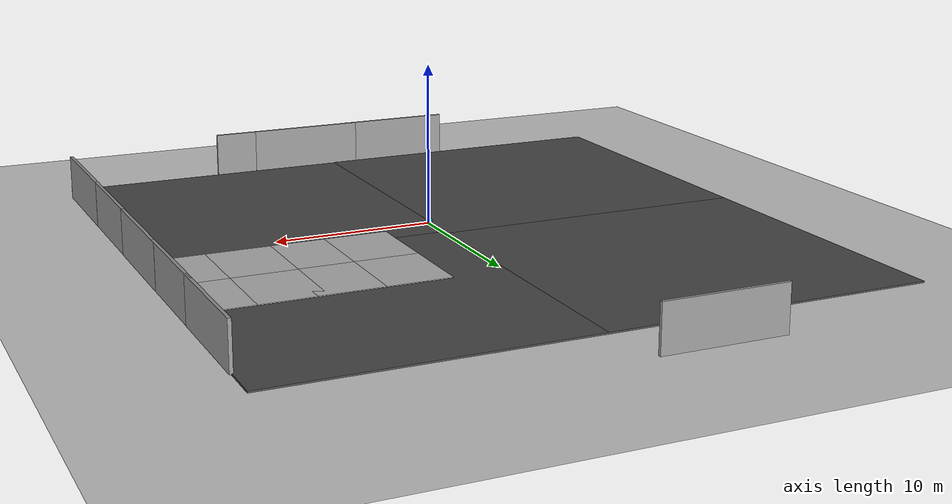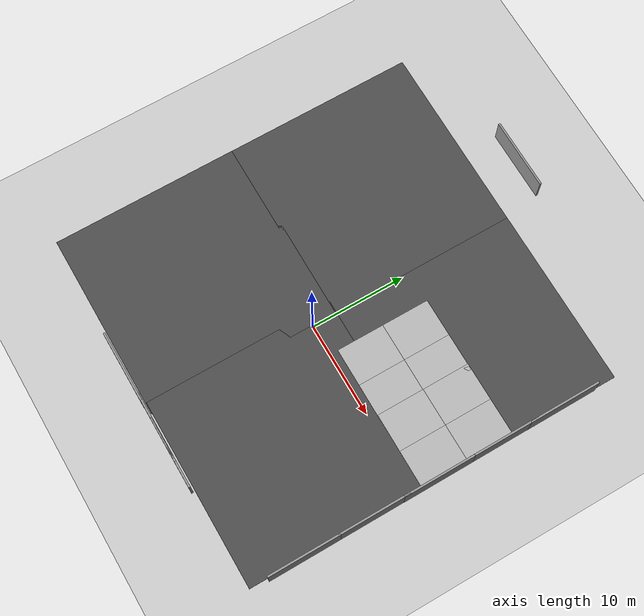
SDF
<sdf version="1.6">
 <world name="default">
  <model name="ground_plane">
   <static>1</static>
   <link name="link">
    <collision name="collision">
     <geometry><plane><normal>0 0 1</normal><size>100 100</size></plane></geometry>
     <surface><friction><ode><mu>100</mu><mu2>50</mu2></ode></friction></surface>
    </collision>
    <visual name="visual">
     <cast_shadows>0</cast_shadows>
     <geometry><plane><normal>0 0 1</normal><size>100 100</size></plane></geometry>
     <material>
      <script><uri>file://media/materials/scripts/gazebo.material</uri><name>Gazebo/Grey</name></script>
     </material>
    </visual>
   </link>
  </model>
  <model name="asphalt_plane">
   <static>1</static>
   <link name="link">
    <collision name="collision">
     <geometry><box><size>20 20 0.1</size></box></geometry>
     <surface><friction><ode><mu>100</mu><mu2>50</mu2></ode></friction></surface>
    </collision>
    <visual name="visual">
     <cast_shadows>0</cast_shadows>
     <geometry><box><size>20 20 0.1</size></box></geometry>
     <material>
      <script>
       <uri>model://asphalt_plane/materials/scripts</uri>
       <uri>model://asphalt_plane/materials/textures</uri>
       <name>vrc/asphalt</name>
      </script>
     </material>
    </visual>
   </link>
   <pose>-10.1692 -7.43707 0 0 -0 0</pose>
  </model>
  <model name="asphalt_plane_clone">
   <static>1</static>
   <link name="link">
    <collision name="collision">
     <geometry><box><size>20 20 0.1</size></box></geometry>
     <surface><friction><ode><mu>100</mu><mu2>50</mu2></ode></friction></surface>
    </collision>
    <visual name="visual">
     <cast_shadows>0</cast_shadows>
     <geometry><box><size>20 20 0.1</size></box></geometry>
     <material>
      <script>
       <uri>model://asphalt_plane/materials/scripts</uri>
       <uri>model://asphalt_plane/materials/textures</uri>
       <name>vrc/asphalt</name>
      </script>
     </material>
    </visual>
   </link>
   <pose>-10.1603 12.171 0 0 -0 0</pose>
  </model>
  <model name="asphalt_plane_clone_clone">
   <static>1</static>
   <link name="link">
    <collision name="collision">
     <geometry><box><size>20 20 0.1</size></box></geometry>
     <surface><friction><ode><mu>100</mu><mu2>50</mu2></ode></friction></surface>
    </collision>
    <visual name="visual">
     <cast_shadows>0</cast_shadows>
     <geometry><box><size>20 20 0.1</size></box></geometry>
     <material>
      <script>
       <uri>model://asphalt_plane/materials/scripts</uri>
       <uri>model://asphalt_plane/materials/textures</uri>
       <name>vrc/asphalt</name>
      </script>
     </material>
    </visual>
   </link>
   <pose>8.71597 12.1785 0 0 -0 0</pose>
  </model>
  <model name="asphalt_plane_clone_clone_0">
   <static>1</static>
   <link name="link">
    <collision name="collision">
     <geometry><box><size>20 20 0.1</size></box></geometry>
     <surface><friction><ode><mu>100</mu><mu2>50</mu2></ode></friction></surface>
    </collision>
    <visual name="visual">
     <cast_shadows>0</cast_shadows>
     <geometry><box><size>20 20 0.1</size></box></geometry>
     <material>
      <script>
       <uri>model://asphalt_plane/materials/scripts</uri>
       <uri>model://asphalt_plane/materials/textures</uri>
       <name>vrc/asphalt</name>
      </script>
     </material>
    </visual>
   </link>
   <pose>8.60996 -7.34898 0 0 -0 0</pose>
  </model>
  <model name="grey_wall">
   <static>1</static>
   <link name="link">
    <pose>0 0 1.4 0 -0 0</pose>
    <collision name="collision"><geometry><box><size>7.5 0.2 2.8</size></box></geometry></collision>
    <visual name="visual">
     <cast_shadows>0</cast_shadows>
     <geometry><box><size>7.5 0.2 2.8</size></box></geometry>
     <material>
      <script>
       <uri>model://grey_wall/materials/scripts</uri>
       <uri>model://grey_wall/materials/textures</uri>
       <name>vrc/grey_wall</name>
      </script>
     </material>
    </visual>
   </link>
   <pose>-4.8114 -17.6626 0 0 -0 0</pose>
  </model>
  <model name="grey_wall_clone">
   <static>1</static>
   <link name="link">
    <pose>0 0 1.4 0 -0 0</pose>
    <collision name="collision"><geometry><box><size>7.5 0.2 2.8</size></box></geometry></collision>
    <visual name="visual">
     <cast_shadows>0</cast_shadows>
     <geometry><box><size>7.5 0.2 2.8</size></box></geometry>
     <material>
      <script>
       <uri>model://grey_wall/materials/scripts</uri>
       <uri>model://grey_wall/materials/textures</uri>
       <name>vrc/grey_wall</name>
      </script>
     </material>
    </visual>
   </link>
   <pose>1.84642 -17.6367 0 0 -0 0</pose>
  </model>
  <model name="grey_wall_clone_0">
   <static>1</static>
   <link name="link">
    <pose>0 0 1.4 0 -0 0</pose>
    <collision name="collision"><geometry><box><size>7.5 0.2 2.8</size></box></geometry></collision>
    <visual name="visual">
     <cast_shadows>0</cast_shadows>
     <geometry><box><size>7.5 0.2 2.8</size></box></geometry>
     <material>
      <script>
       <uri>model://grey_wall/materials/scripts</uri>
       <uri>model://grey_wall/materials/textures</uri>
       <name>vrc/grey_wall</name>
      </script>
     </material>
    </visual>
   </link>
   <pose>4.62088 -17.6372 0 0 -0 0</pose>
  </model>
  <model name="grey_wall_clone_clone">
   <static>1</static>
   <link name="link">
    <pose>0 0 1.4 0 -0 0</pose>
    <collision name="collision"><geometry><box><size>7.5 0.2 2.8</size></box></geometry></collision>
    <visual name="visual">
     <cast_shadows>0</cast_shadows>
     <geometry><box><size>7.5 0.2 2.8</size></box></geometry>
     <material>
      <script>
       <uri>model://grey_wall/materials/scripts</uri>
       <uri>model://grey_wall/materials/textures</uri>
       <name>vrc/grey_wall</name>
      </script>
     </material>
    </visual>
   </link>
   <pose>-4.48764 26.0166 0 0 -0 0</pose>
  </model>
  <model name="grey_wall_clone_clone_clone">
   <static>1</static>
   <link name="link">
    <pose>0 0 1.4 0 -0 0</pose>
    <collision name="collision"><geometry><box><size>7.5 0.2 2.8</size></box></geometry></collision>
    <visual name="visual">
     <cast_shadows>0</cast_shadows>
     <geometry><box><size>7.5 0.2 2.8</size></box></geometry>
     <material>
      <script>
       <uri>model://grey_wall/materials/scripts</uri>
       <uri>model://grey_wall/materials/textures</uri>
       <name>vrc/grey_wall</name>
      </script>
     </material>
    </visual>
   </link>
   <pose>18.7544 16.0387 0 0 0 -1.56734</pose>
  </model>
  <model name="grey_wall_clone_clone_clone_clone">
   <static>1</static>
   <link name="link">
    <pose>0 0 1.4 0 -0 0</pose>
    <collision name="collision"><geometry><box><size>7.5 0.2 2.8</size></box></geometry></collision>
    <visual name="visual">
     <cast_shadows>0</cast_shadows>
     <geometry><box><size>7.5 0.2 2.8</size></box></geometry>
     <material>
      <script>
       <uri>model://grey_wall/materials/scripts</uri>
       <uri>model://grey_wall/materials/textures</uri>
       <name>vrc/grey_wall</name>
      </script>
     </material>
    </visual>
   </link>
   <pose>18.767 9.41754 0 0 0 -1.56734</pose>
  </model>
  <model name="grey_wall_clone_clone_clone_clone_0">
   <static>1</static>
   <link name="link">
    <pose>0 0 1.4 0 -0 0</pose>
    <collision name="collision"><geometry><box><size>7.5 0.2 2.8</size></box></geometry></collision>
    <visual name="visual">
     <cast_shadows>0</cast_shadows>
     <geometry><box><size>7.5 0.2 2.8</size></box></geometry>
     <material>
      <script>
       <uri>model://grey_wall/materials/scripts</uri>
       <uri>model://grey_wall/materials/textures</uri>
       <name>vrc/grey_wall</name>
      </script>
     </material>
    </visual>
   </link>
   <pose>18.7963 2.45369 0 0 0 -1.56734</pose>
  </model>
  <model name="grey_wall_clone_clone_clone_clone_1">
   <static>1</static>
   <link name="link">
    <pose>0 0 1.4 0 -0 0</pose>
    <collision name="collision"><geometry><box><size>7.5 0.2 2.8</size></box></geometry></collision>
    <visual name="visual">
     <cast_shadows>0</cast_shadows>
     <geometry><box><size>7.5 0.2 2.8</size></box></geometry>
     <material>
      <script>
       <uri>model://grey_wall/materials/scripts</uri>
       <uri>model://grey_wall/materials/textures</uri>
       <name>vrc/grey_wall</name>
      </script>
     </material>
    </visual>
   </link>
   <pose>18.8058 -4.41342 0 0 0 -1.56734</pose>
  </model>
  <model name="grey_wall_clone_clone_clone_clone_2">
   <static>1</static>
   <link name="link">
    <pose>0 0 1.4 0 -0 0</pose>
    <collision name="collision"><geometry><box><size>7.5 0.2 2.8</size></box></geometry></collision>
    <visual name="visual">
     <cast_shadows>0</cast_shadows>
     <geometry><box><size>7.5 0.2 2.8</size></box></geometry>
     <material>
      <script>
       <uri>model://grey_wall/materials/scripts</uri>
       <uri>model://grey_wall/materials/textures</uri>
       <name>vrc/grey_wall</name>
      </script>
     </material>
    </visual>
   </link>
   <pose>18.8343 -11.7301 0 0 0 -1.56734</pose>
  </model>
  <model name="mud_box">
   <static>1</static>
   <link name="link">
    <collision name="collision"><geometry><box><size>8 10 0.2</size></box></geometry></collision>
    <visual name="visual_1">
     <pose>-2 2.5 0 0 -0 0</pose>
     <cast_shadows>0</cast_shadows>
     <geometry><box><size>4 5 0.2</size></box></geometry>
     <material>
      <script>
       <uri>model://mud_box/materials/scripts</uri>
       <uri>model://mud_box/materials/textures</uri>
       <name>vrc/mud</name>
      </script>
     </material>
    </visual>
    <visual name="visual_2">
     <pose>2 2.5 0 0 -0 0</pose>
     <cast_shadows>0</cast_shadows>
     <geometry><box><size>4 5 0.2</size></box></geometry>
     <material>
      <script>
       <uri>model://mud_box/materials/scripts</uri>
       <uri>model://mud_box/materials/textures</uri>
       <name>vrc/mud</name>
      </script>
     </material>
    </visual>
    <visual name="visual_3">
     <pose>2 -2.5 0 0 -0 0</pose>
     <cast_shadows>0</cast_shadows>
     <geometry><box><size>4 5 0.2</size></box></geometry>
     <material>
      <script>
       <uri>model://mud_box/materials/scripts</uri>
       <uri>model://mud_box/materials/textures</uri>
       <name>vrc/mud</name>
      </script>
     </material>
    </visual>
    <visual name="visual_4">
     <pose>-2 -2.5 0 0 -0 0</pose>
     <cast_shadows>0</cast_shadows>
     <geometry><box><size>4 5 0.2</size></box></geometry>
     <material>
      <script>
       <uri>model://mud_box/materials/scripts</uri>
       <uri>model://mud_box/materials/textures</uri>
       <name>vrc/mud</name>
      </script>
     </material>
    </visual>
   </link>
   <pose>14.6137 5.86275 0 0 -0 0</pose>
  </model>
  <model name="mud_box_clone">
   <static>1</static>
   <link name="link">
    <collision name="collision"><geometry><box><size>8 10 0.2</size></box></geometry></collision>
    <visual name="visual_1">
     <pose>-2 2.5 0 0 -0 0</pose>
     <cast_shadows>0</cast_shadows>
     <geometry><box><size>4 5 0.2</size></box></geometry>
     <material>
      <script>
       <uri>model://mud_box/materials/scripts</uri>
       <uri>model://mud_box/materials/textures</uri>
       <name>vrc/mud</name>
      </script>
     </material>
    </visual>
    <visual name="visual_2">
     <pose>2 2.5 0 0 -0 0</pose>
     <cast_shadows>0</cast_shadows>
     <geometry><box><size>4 5 0.2</size></box></geometry>
     <material>
      <script>
       <uri>model://mud_box/materials/scripts</uri>
       <uri>model://mud_box/materials/textures</uri>
       <name>vrc/mud</name>
      </script>
     </material>
    </visual>
    <visual name="visual_3">
     <pose>2 -2.5 0 0 -0 0</pose>
     <cast_shadows>0</cast_shadows>
     <geometry><box><size>4 5 0.2</size></box></geometry>
     <material>
      <script>
       <uri>model://mud_box/materials/scripts</uri>
       <uri>model://mud_box/materials/textures</uri>
       <name>vrc/mud</name>
      </script>
     </material>
    </visual>
    <visual name="visual_4">
     <pose>-2 -2.5 0 0 -0 0</pose>
     <cast_shadows>0</cast_shadows>
     <geometry><box><size>4 5 0.2</size></box></geometry>
     <material>
      <script>
       <uri>model://mud_box/materials/scripts</uri>
       <uri>model://mud_box/materials/textures</uri>
       <name>vrc/mud</name>
      </script>
     </material>
    </visual>
   </link>
   <pose>7.23773 5.83307 0 0 -0 0</pose>
  </model>
  <light name="sun" type="directional">
   <pose>0 0 10 0 -0 0</pose>
   <diffuse>0.8 0.8 0.8 1</diffuse>
   <specular>0.2 0.2 0.2 1</specular>
   <attenuation>
    <range>1000</range>
    <constant>0.9</constant>
    <linear>0.01</linear>
    <quadratic>0.001</quadratic>
   </attenuation>
   <direction>-0.5 0.1 -0.9</direction>
  </light>
  <gravity>0 0 -9.8</gravity>
  <magnetic_field>6e-06 2.3e-05 -4.2e-05</magnetic_field>
  <atmosphere type="adiabatic"/>
  <physics name="default_physics" default="0" type="ode">
   <max_step_size>0.001</max_step_size>
   <real_time_factor>1</real_time_factor>
   <real_time_update_rate>1000</real_time_update_rate>
  </physics>
  <scene><ambient>0.4 0.4 0.4 1</ambient><background>0.7 0.7 0.7 1</background><shadows>1</shadows></scene>
  <audio><device>default</device></audio>
  <spherical_coordinates>
   <surface_model>EARTH_WGS84</surface_model>
   <latitude_deg>47.840640</latitude_deg>
   <longitude_deg>10.619944</longitude_deg>
   <elevation>740.0</elevation>
   <heading_deg>180</heading_deg>
  </spherical_coordinates>
  <include><uri>model://toto2</uri></include>
 </world>
</sdf>

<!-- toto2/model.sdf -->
<sdf version="1.5">
  <model name="toto2">
    <static>false</static>

    <!-- **************************** BASE_FOOTPRINT ********************************* -->

    <link name="base_footprint"/>

    <!-- **************************** BASE_LINK ********************************* -->

    <link name="base_link">
      <inertial>
        <pose>0 0.002513049838439521 0.1635865428520959 0 0 0</pose>
        <inertia>
          <ixx>0.380455</ixx>
          <iyy>0.569614</iyy>
          <izz>0.629258</izz>
          <ixy>0.0</ixy>
          <iyz>0.004146</iyz>
          <ixz>0.0</ixz>
        </inertia>
        <mass>7.0</mass>
      </inertial>

      <visual name="base_visual">
        <pose> 0 0 0 0 0 -1.57079633</pose>
        <geometry>
          <mesh>
            <uri>model://toto2/meshes/base_link.stl</uri>
            <scale>0.001 0.001 0.001</scale>
          </mesh>
        </geometry>
        <material>
          <ambient>0.0 1.0 1.0 1.0</ambient>
          <diffuse>0.0 1.0 1.0 1.0</diffuse>
          <specular>0.0 0.0 0.0 1.0</specular>
          <emissive>0.0 0.0 0.0 1.0</emissive>
        </material>
      </visual>

      <collision name="base_collision">
        <pose>0 0 0.001 0 0 -1.57079633</pose>
        <geometry>
          <mesh>
            <uri>model://toto2/meshes/base_link.stl</uri>
            <scale>0.001 0.001 0.001</scale>
          </mesh>
        </geometry>

        <surface>
          <!-- Define the friction properties -->
          <friction>
            <ode>
              <mu>0.001</mu>           <!-- Coefficient of friction -->
              <mu2>0.001</mu2>         <!-- Second coefficient of friction -->
              <fdir1>1 0 0</fdir1>   <!-- Direction of the first friction axis -->
              <slip1>0.0</slip1>     <!-- Slip along the first friction axis -->
              <slip2>0.0</slip2>     <!-- Slip along the second friction axis -->
            </ode>
          </friction>
        </surface>
      </collision>
    </link>

    <!-- **************************** LIDAR ********************************* -->

    <link name="lidar_1">
      <inertial>
        <pose>2.2068762530809514e-10 0.08500000036781817 -0.07958250099962488 0 0 0</pose>
        <inertia>
          <ixx>0.000336</ixx>
          <iyy>0.000279</iyy>
          <izz>0.000513</izz>
          <ixy>0.0</ixy>
          <iyz>-0.0</iyz>
          <ixz>-0.</ixz>
        </inertia>
        <mass>0.2</mass>
      </inertial>

      <visual name="lidar_visual">
        <pose>0.0 0.0 -0.0 0 0 -1.57079633</pose>
        <geometry>
          <mesh>
            <uri>model://toto2/meshes/lidar_1.stl</uri>
            <scale>0.001 0.001 0.001</scale>
          </mesh>
        </geometry>
        <material>
          <ambient>1.0 0.0 0.0 1.0</ambient>
          <diffuse>1.0 0.0 0.0 1.0</diffuse>
          <specular>0.0 0.0 0.0 1.0</specular>
          <emissive>0.0 0.0 0.0 1.0</emissive>
        </material>
      </visual>

      <collision name="lidar_collision">
        <pose>0.0 -0.0 -0.0 0 0 -1.57079633</pose>
        <geometry>
          <mesh>
            <uri>model://toto2/meshes/lidar_1.stl</uri>
            <scale>0.001 0.001 0.001</scale>
          </mesh>
        </geometry>
      </collision>

      <sensor name="hls_lfcd_lds" type="ray">
        <pose>0.0 -0.0 0.21 0 0 0</pose>
        <always_on>true</always_on>
        <visualize>false</visualize>
        <update_rate>5</update_rate>
        <ray>
          <scan>
            <horizontal>
              <samples>360</samples>
              <resolution>1.00000</resolution>
              <min_angle>0.000000</min_angle>
              <max_angle>6.280000</max_angle>
            </horizontal>
          </scan>
          <range>
            <min>0.250000</min>
            <max>8</max>
            <resolution>0.015000</resolution>
          </range>
          <noise>
            <type>gaussian</type>
            <mean>0.0</mean>
            <stddev>0.01</stddev>
          </noise>
        </ray>
        <plugin name="toto2_scan" filename="libgazebo_ros_ray_sensor.so">
          <ros>
            <remapping>~/out:=scan</remapping>
          </ros>
          <output_type>sensor_msgs/LaserScan</output_type>
          <frame_name>lidar_1</frame_name>
        </plugin>
      </sensor>
    </link>

    <!-- **************************** IMU ********************************* -->

    <link name="imu_link">
      <sensor name="toto2_imu" type="imu">
        <always_on>true</always_on>
        <update_rate>200</update_rate>
        <imu>
          <angular_velocity>
            <x>
              <noise type="gaussian">
                <mean>0.0</mean>
                <stddev>2e-4</stddev>
              </noise>
            </x>
            <y>
              <noise type="gaussian">
                <mean>0.0</mean>
                <stddev>2e-4</stddev>
              </noise>
            </y>
            <z>
              <noise type="gaussian">
                <mean>0.0</mean>
                <stddev>2e-4</stddev>
              </noise>
            </z>
          </angular_velocity>
          <linear_acceleration>
            <x>
              <noise type="gaussian">
                <mean>0.0</mean>
                <stddev>1.7e-2</stddev>
              </noise>
            </x>
            <y>
              <noise type="gaussian">
                <mean>0.0</mean>
                <stddev>1.7e-2</stddev>
              </noise>
            </y>
            <z>
              <noise type="gaussian">
                <mean>0.0</mean>
                <stddev>1.7e-2</stddev>
              </noise>
            </z>
          </linear_acceleration>
        </imu>
        <plugin name="toto2_imu" filename="libgazebo_ros_imu_sensor.so">
          <ros>
            <remapping>~/out:=imu</remapping>
          </ros>
        </plugin>
      </sensor>
    </link>

    <!-- **************************** CAMERA ********************************* -->

    <link name="camera_link1_1">
      <visual name="left_wheel_visual">
        <pose>0.0 0.0 0.0 0 0 -1.57079633</pose>
        <geometry>
          <mesh>
            <uri>model://toto2/meshes/camera_link1_1.stl</uri>
            <scale>0.001 0.001 0.001</scale>
          </mesh>
        </geometry>
        <material>
          <ambient>0.0 1.0 0.0 1.0</ambient>
          <diffuse>0.0 1.0 0.0 1.0</diffuse>
          <specular>0.0 0.0 0.0 1.0</specular>
          <emissive>0.0 0.0 0.0 1.0</emissive>
        </material>
      </visual>
    </link>

    <link name="camera_link2_1">
      <visual name="left_wheel_visual">
        <pose>0.0 0.0 0.0 0 0 -1.57079633</pose>
        <geometry>
          <mesh>
            <uri>model://toto2/meshes/camera_link2_1.stl</uri>
            <scale>0.001 0.001 0.001</scale>
          </mesh>
        </geometry>
        <material>
          <ambient>1.0 0.0 1.0 1.0</ambient>
          <diffuse>1.0 0.0 1.0 1.0</diffuse>
          <specular>0.0 0.0 0.0 1.0</specular>
          <emissive>0.0 0.0 0.0 1.0</emissive>
        </material>
      </visual>
    </link>

    <link name="camera_1">
      <visual name="left_wheel_visual">
        <pose>0.0 0.0 0.0 0 0 -1.57079633</pose>
        <geometry>
          <mesh>
            <uri>model://toto2/meshes/camera_1.stl</uri>
            <scale>0.001 0.001 0.001</scale>
          </mesh>
        </geometry>
        <material>
          <ambient>1.0 1.0 1.0 1.0</ambient>
          <diffuse>1.0 1.0 1.0 1.0</diffuse>
          <specular>0.0 0.0 0.0 1.0</specular>
          <emissive>0.0 0.0 0.0 1.0</emissive>
        </material>
      </visual>

      <sensor name="camera" type="camera">
        <pose>0.21 -0.0 0.3365 0 0 0</pose>
        <always_on>true</always_on>
        <visualize>false</visualize>
        <update_rate>30</update_rate>
        <camera name="picam">
          <horizontal_fov>1.085595</horizontal_fov>
          <image>
            <width>640</width>
            <height>480</height>
            <format>R8G8B8</format>
          </image>
          <clip>
            <near>0.03</near>
            <far>100</far>
          </clip>
          <noise>
            <type>gaussian</type>
            <mean>0.0</mean>
            <stddev>0.007</stddev>
          </noise>
        </camera>
        <plugin name="camera_driver" filename="libgazebo_ros_camera.so">
          <ros>
            <namespace>test_cam</namespace>
            <remapping>image_raw:=image_demo</remapping>
            <remapping>camera_info:=camera_info_demo</remapping>
          </ros>
          <frame_name>camera_1</frame_name>
        </plugin>
      </sensor>
    </link>

    <!-- **************************** RIGHT_WHEEL ********************************* -->

    <link name="right_wheel_1">
      <inertial>
        <pose>0.03541204935975309 -2.4243289958354717e-14 -9.020562075079397e-17 0 0 0</pose>
        <inertia>
          <ixx>0.002407</ixx>
          <iyy>0.001396</iyy>
          <izz>0.001396</izz>
          <ixy>0.0</ixy>
          <iyz>0.0</iyz>
          <ixz>0.0</ixz>
        </inertia>
        <mass>1</mass>
      </inertial>

      <visual name="right_wheel_visual">
        <pose>-0.0 0.0 -0.0 0 0 -1.57079633</pose>
        <geometry>
          <mesh>
            <uri>model://toto2/meshes/right_wheel_1.stl</uri>
            <scale>0.001 0.001 0.001</scale>
          </mesh>
        </geometry>
        <material>
          <ambient>1.0 1.0 0.0 1.0</ambient>
          <diffuse>1.0 1.0 0.0 1.0</diffuse>
          <specular>0.0 0.0 0.0 1.0</specular>
          <emissive>0.0 0.0 0.0 1.0</emissive>
        </material>
      </visual>

      <collision name="right_wheel_collision">
        <pose>-0.0 0.0 -0.0 0 0 -1.57079633</pose>
        <geometry>
          <mesh>
            <uri>model://toto2/meshes/right_wheel_1.stl</uri>
            <scale>0.001 0.001 0.001</scale>
          </mesh>
        </geometry>

        <surface>
          <!-- Define the friction properties -->
          <friction>
            <ode>
              <mu>10000</mu>           <!-- Coefficient of friction -->
              <mu2>1000000</mu2>         <!-- Second coefficient of friction -->
              <fdir1>1 0 0</fdir1>   <!-- Direction of the first friction axis -->
              <slip1>0.0</slip1>     <!-- Slip along the first friction axis -->
              <slip2>0.0</slip2>     <!-- Slip along the second friction axis -->
            </ode>
          </friction>
        </surface>
      </collision>
    </link>

    <!-- **************************** LEFT_WHEEL ********************************* -->

    <link name="left_wheel_1">
      <inertial>
        <pose>-0.03541204935975312 4.3327407697699233e-14 -6.245004513516506e-17 0 0 0</pose>
        <inertia>
          <ixx>0.002407</ixx>
          <iyy>0.001396</iyy>
          <izz>0.001396</izz>
          <ixy>0.0</ixy>
          <iyz>0.0</iyz>
          <ixz>0.0</ixz>
        </inertia>
        <mass>1</mass>
      </inertial>

      <visual name="left_wheel_visual">
        <pose>0.0 0.0 0.0 0 0 -1.57079633</pose>
        <geometry>
          <mesh>
            <uri>model://toto2/meshes/left_wheel_1.stl</uri>
            <scale>0.001 0.001 0.001</scale>
          </mesh>
        </geometry>
        <material>
          <ambient>1.0 1.0 0.0 1.0</ambient>
          <diffuse>1.0 1.0 0.0 1.0</diffuse>
          <specular>0.0 0.0 0.0 1.0</specular>
          <emissive>0.0 0.0 0.0 1.0</emissive>
        </material>
      </visual>

      <collision name="left_wheel_collision">
        <pose>0.0 0.0 0.0 0 0 -1.57079633</pose>
        <geometry>
          <mesh>
            <uri>model://toto2/meshes/left_wheel_1.stl</uri>
            <scale>0.001 0.001 0.001</scale>
          </mesh>
        </geometry>

        <surface>
          <!-- Define the friction properties -->
          <friction>
            <ode>
              <mu>10000</mu>           <!-- Coefficient of friction -->
              <mu2>1000000</mu2>         <!-- Second coefficient of friction -->
              <fdir1>1 0 0</fdir1>   <!-- Direction of the first friction axis -->
              <slip1>0.0</slip1>     <!-- Slip along the first friction axis -->
              <slip2>0.0</slip2>     <!-- Slip along the second friction axis -->
            </ode>
          </friction>
        </surface>
      </collision>
    </link>

    <!-- **************************** JOINTS ********************************* -->

    <joint name="left_wheel_joint" type="revolute">
      <pose>0.0 0.1195 0.0499 0 0 -1.57079633</pose>
      <parent>base_link</parent>
      <child>left_wheel_1</child>
      <axis>
        <xyz>-1.0 0.0 0.0</xyz>
      </axis>
    </joint>

    <joint name="right_wheel_joint" type="revolute">
      <pose>0.0 -0.1195 0.0499 0 0 -1.57079633</pose>
      <parent>base_link</parent>
      <child>right_wheel_1</child>
      <axis>
        <xyz>-1.0 0.0 0.0</xyz>
      </axis>
    </joint>

    <joint name="lidar_joint" type="fixed">
      <parent>base_link</parent>
      <child>lidar_1</child>
      <pose>0.1 0.0 0.17 0 0 0</pose>
    </joint>

    <joint name="base" type="fixed">
      <parent>base_footprint</parent>
      <child>base_link</child>
      <pose>0.0 0.0 0.1 0 0 0</pose>
      <axis>
        <xyz>0 0 1</xyz>
      </axis>
    </joint>

    <joint name="imu_joint" type="fixed">
      <parent>base_link</parent>
      <child>imu_link</child>
      <pose>0.0 0.0 0.17 0 0 0</pose>
      <axis>
        <xyz>0 0 1</xyz>
      </axis>
    </joint>

    <joint name="camera_joint_1" type="fixed">
      <parent>base_link</parent>
      <child>camera_link1_1</child>
      <pose>0.16 0.0 0.2795 0 0 0</pose>
    </joint>

    <joint name="camera_joint_2" type="fixed">
      <parent>camera_link1_1</parent>
      <child>camera_link2_1</child>
      <pose>0.03 0.0 0.042 0 0 0</pose>
    </joint>

    <joint name="camera_joint" type="fixed">
      <parent>camera_link2_1</parent>
      <child>camera_1</child>
      <pose>0.020 0.01 0.015 0 0 0</pose>
    </joint>

    <!-- *********************** WHEEL ODOMETRY ***************************    -->
    <plugin name="toto2_diff_drive" filename="libgazebo_ros_diff_drive.so">

      <update_rate>30</update_rate>

      <!-- wheels -->
      <left_joint>left_wheel_joint</left_joint>
      <right_joint>right_wheel_joint</right_joint>

      <!-- kinematics -->
      <wheel_separation>0.315</wheel_separation>
      <wheel_diameter>0.1</wheel_diameter>

      <!-- limits -->
      <max_wheel_torque>20</max_wheel_torque>
      <max_wheel_acceleration>1.0</max_wheel_acceleration>

      <!-- Receive velocity commands on this ROS topic -->
      <command_topic>cmd_vel</command_topic>

      <!-- output -->
      <!-- When false, publish no wheel odometry data to a ROS topic -->
      <publish_odom>true</publish_odom>

      <!-- When true, publish coordinate transform from odom to base_footprint -->
      <!-- I usually use the robot_localization package to publish this transform -->
      <publish_odom_tf>true</publish_odom_tf>

      <!-- When true, publish coordinate transform from base_link to the wheels -->
      <!-- The robot_state_publisher package is often used to publish this transform -->
      <publish_wheel_tf>false</publish_wheel_tf>

      <odometry_topic>odom</odometry_topic>
      <odometry_frame>odom</odometry_frame>
      <robot_base_frame>base_footprint</robot_base_frame>

      <!-- Odometry source, 0 for ENCODER, 1 for WORLD, defaults to WORLD -->
      <odometry_source>0</odometry_source>

      <!-- Change the ROS topic we will publish the odometry data to -->

    </plugin>

    <!-- *********************** JOINT STATE PUBLISHER *********************   -->

    <plugin name="toto_joint_state" filename="libgazebo_ros_joint_state_publisher.so">
      <ros>
        <remapping>~/out:=joint_states</remapping>
      </ros>
      <update_rate>30</update_rate>
      <joint_name>left_wheel_joint</joint_name>
      <joint_name>right_wheel_joint</joint_name>
    </plugin>

  </model>
</sdf>
